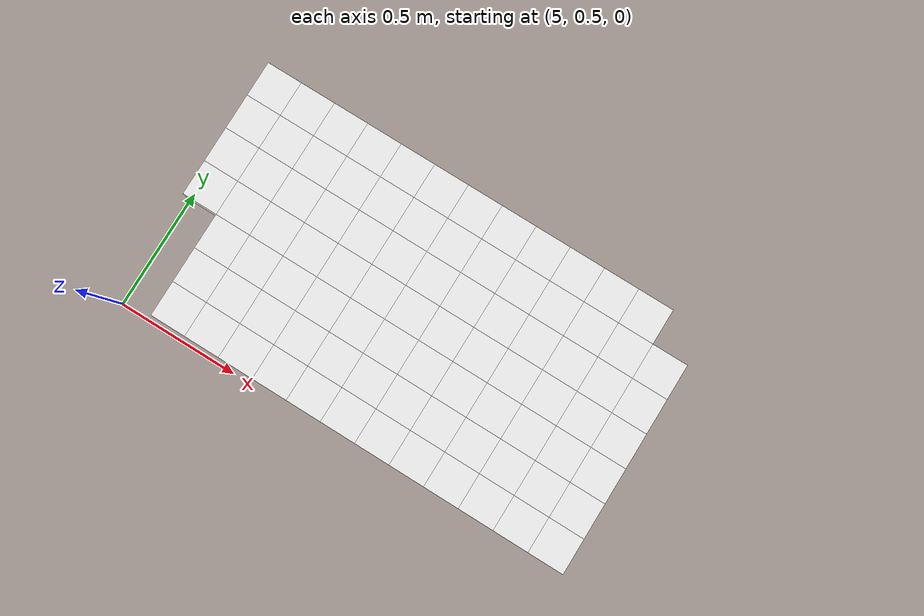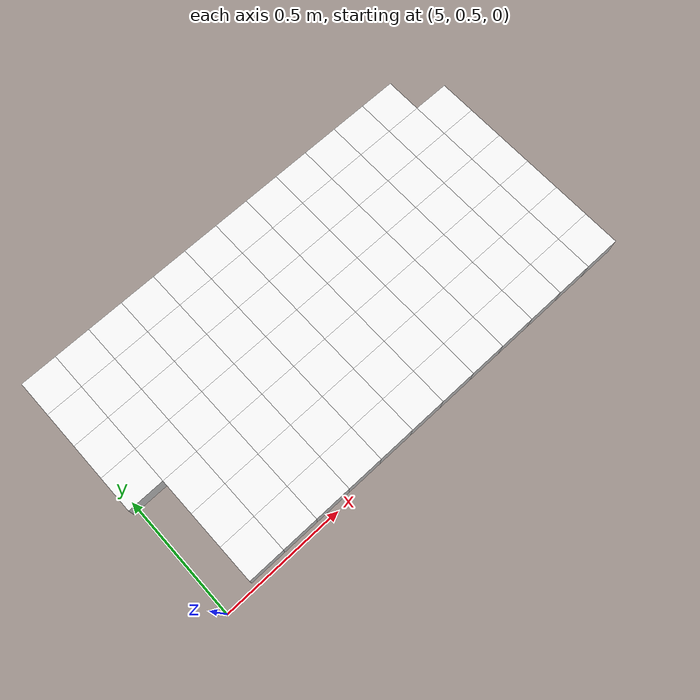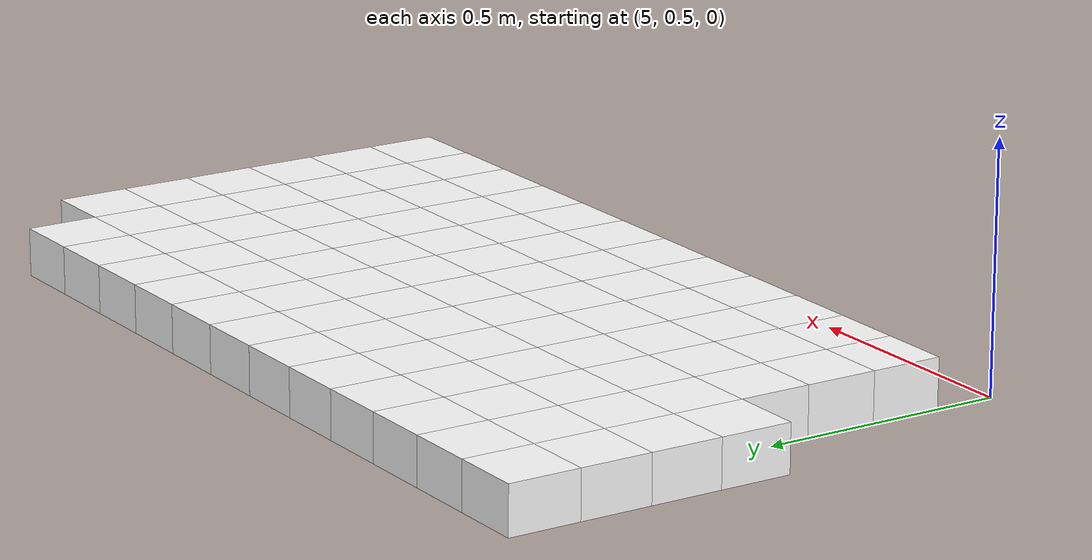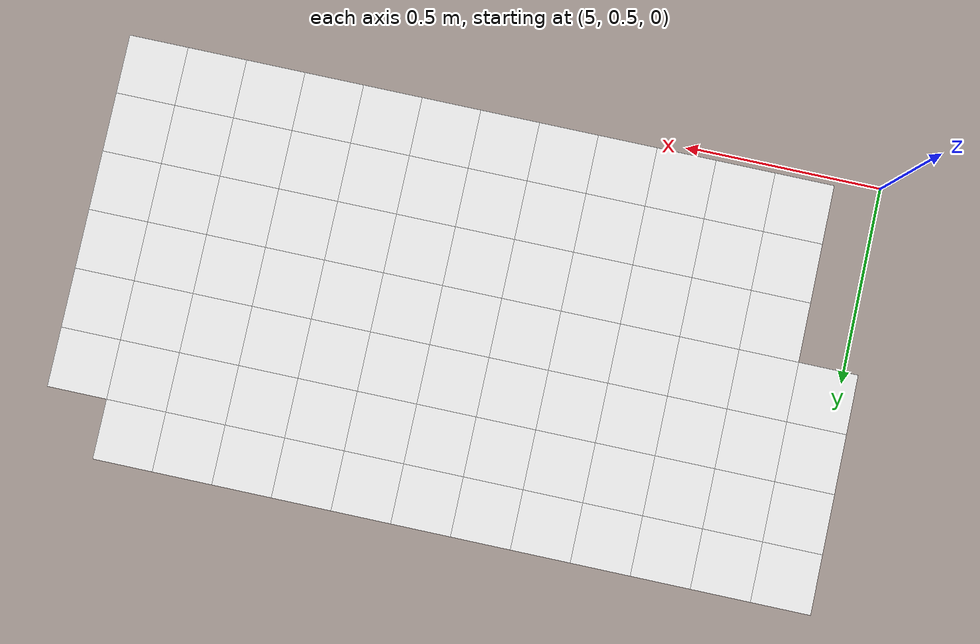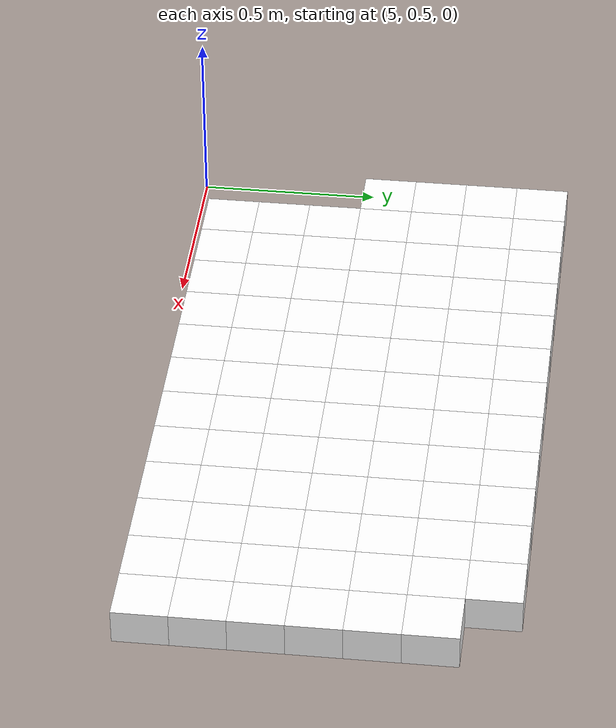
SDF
<sdf version="1.7">
 <world name="default">
  <include><uri>model://sun</uri></include>
  <model name="static_environment">
   <static>true</static>
   <link name="region_468">
    <pose>5.200000000000003 0.6 0.0 0.0 0.0 0.0</pose>
    <collision name="region_468_collision">
     <geometry><box><size>0.15 0.15 0.1</size></box></geometry>
     <surface><friction><ode><mu>1.0</mu><mu2>1.0</mu2></ode></friction></surface>
    </collision>
    <visual name="region_468_visual">
     <geometry><box><size>0.15 0.15 0.1</size></box></geometry>
     <material><ambient>1.0 1.0 1.0 1.0</ambient><diffuse>1.0 1.0 1.0 1.0</diffuse></material>
    </visual>
   </link>
   <link name="region_469">
    <pose>5.350000000000003 0.6 0.0 0.0 0.0 0.0</pose>
    <collision name="region_469_collision">
     <geometry><box><size>0.15 0.15 0.1</size></box></geometry>
     <surface><friction><ode><mu>1.0</mu><mu2>1.0</mu2></ode></friction></surface>
    </collision>
    <visual name="region_469_visual">
     <geometry><box><size>0.15 0.15 0.1</size></box></geometry>
     <material><ambient>1.0 1.0 1.0 1.0</ambient><diffuse>1.0 1.0 1.0 1.0</diffuse></material>
    </visual>
   </link>
   <link name="region_470">
    <pose>5.5000000000000036 0.6 0.0 0.0 0.0 0.0</pose>
    <collision name="region_470_collision">
     <geometry><box><size>0.15 0.15 0.1</size></box></geometry>
     <surface><friction><ode><mu>1.0</mu><mu2>1.0</mu2></ode></friction></surface>
    </collision>
    <visual name="region_470_visual">
     <geometry><box><size>0.15 0.15 0.1</size></box></geometry>
     <material><ambient>1.0 1.0 1.0 1.0</ambient><diffuse>1.0 1.0 1.0 1.0</diffuse></material>
    </visual>
   </link>
   <link name="region_471">
    <pose>5.650000000000004 0.6 0.0 0.0 0.0 0.0</pose>
    <collision name="region_471_collision">
     <geometry><box><size>0.15 0.15 0.1</size></box></geometry>
     <surface><friction><ode><mu>1.0</mu><mu2>1.0</mu2></ode></friction></surface>
    </collision>
    <visual name="region_471_visual">
     <geometry><box><size>0.15 0.15 0.1</size></box></geometry>
     <material><ambient>1.0 1.0 1.0 1.0</ambient><diffuse>1.0 1.0 1.0 1.0</diffuse></material>
    </visual>
   </link>
   <link name="region_472">
    <pose>5.800000000000004 0.6 0.0 0.0 0.0 0.0</pose>
    <collision name="region_472_collision">
     <geometry><box><size>0.15 0.15 0.1</size></box></geometry>
     <surface><friction><ode><mu>1.0</mu><mu2>1.0</mu2></ode></friction></surface>
    </collision>
    <visual name="region_472_visual">
     <geometry><box><size>0.15 0.15 0.1</size></box></geometry>
     <material><ambient>1.0 1.0 1.0 1.0</ambient><diffuse>1.0 1.0 1.0 1.0</diffuse></material>
    </visual>
   </link>
   <link name="region_473">
    <pose>5.950000000000005 0.6 0.0 0.0 0.0 0.0</pose>
    <collision name="region_473_collision">
     <geometry><box><size>0.15 0.15 0.1</size></box></geometry>
     <surface><friction><ode><mu>1.0</mu><mu2>1.0</mu2></ode></friction></surface>
    </collision>
    <visual name="region_473_visual">
     <geometry><box><size>0.15 0.15 0.1</size></box></geometry>
     <material><ambient>1.0 1.0 1.0 1.0</ambient><diffuse>1.0 1.0 1.0 1.0</diffuse></material>
    </visual>
   </link>
   <link name="region_474">
    <pose>6.100000000000005 0.6 0.0 0.0 0.0 0.0</pose>
    <collision name="region_474_collision">
     <geometry><box><size>0.15 0.15 0.1</size></box></geometry>
     <surface><friction><ode><mu>1.0</mu><mu2>1.0</mu2></ode></friction></surface>
    </collision>
    <visual name="region_474_visual">
     <geometry><box><size>0.15 0.15 0.1</size></box></geometry>
     <material><ambient>1.0 1.0 1.0 1.0</ambient><diffuse>1.0 1.0 1.0 1.0</diffuse></material>
    </visual>
   </link>
   <link name="region_475">
    <pose>6.250000000000005 0.6 0.0 0.0 0.0 0.0</pose>
    <collision name="region_475_collision">
     <geometry><box><size>0.15 0.15 0.1</size></box></geometry>
     <surface><friction><ode><mu>1.0</mu><mu2>1.0</mu2></ode></friction></surface>
    </collision>
    <visual name="region_475_visual">
     <geometry><box><size>0.15 0.15 0.1</size></box></geometry>
     <material><ambient>1.0 1.0 1.0 1.0</ambient><diffuse>1.0 1.0 1.0 1.0</diffuse></material>
    </visual>
   </link>
   <link name="region_476">
    <pose>6.400000000000006 0.6 0.0 0.0 0.0 0.0</pose>
    <collision name="region_476_collision">
     <geometry><box><size>0.15 0.15 0.1</size></box></geometry>
     <surface><friction><ode><mu>1.0</mu><mu2>1.0</mu2></ode></friction></surface>
    </collision>
    <visual name="region_476_visual">
     <geometry><box><size>0.15 0.15 0.1</size></box></geometry>
     <material><ambient>1.0 1.0 1.0 1.0</ambient><diffuse>1.0 1.0 1.0 1.0</diffuse></material>
    </visual>
   </link>
   <link name="region_477">
    <pose>6.550000000000006 0.6 0.0 0.0 0.0 0.0</pose>
    <collision name="region_477_collision">
     <geometry><box><size>0.15 0.15 0.1</size></box></geometry>
     <surface><friction><ode><mu>1.0</mu><mu2>1.0</mu2></ode></friction></surface>
    </collision>
    <visual name="region_477_visual">
     <geometry><box><size>0.15 0.15 0.1</size></box></geometry>
     <material><ambient>1.0 1.0 1.0 1.0</ambient><diffuse>1.0 1.0 1.0 1.0</diffuse></material>
    </visual>
   </link>
   <link name="region_478">
    <pose>6.700000000000006 0.6 0.0 0.0 0.0 0.0</pose>
    <collision name="region_478_collision">
     <geometry><box><size>0.15 0.15 0.1</size></box></geometry>
     <surface><friction><ode><mu>1.0</mu><mu2>1.0</mu2></ode></friction></surface>
    </collision>
    <visual name="region_478_visual">
     <geometry><box><size>0.15 0.15 0.1</size></box></geometry>
     <material><ambient>1.0 1.0 1.0 1.0</ambient><diffuse>1.0 1.0 1.0 1.0</diffuse></material>
    </visual>
   </link>
   <link name="region_479">
    <pose>6.850000000000007 0.6 0.0 0.0 0.0 0.0</pose>
    <collision name="region_479_collision">
     <geometry><box><size>0.15 0.15 0.1</size></box></geometry>
     <surface><friction><ode><mu>1.0</mu><mu2>1.0</mu2></ode></friction></surface>
    </collision>
    <visual name="region_479_visual">
     <geometry><box><size>0.15 0.15 0.1</size></box></geometry>
     <material><ambient>1.0 1.0 1.0 1.0</ambient><diffuse>1.0 1.0 1.0 1.0</diffuse></material>
    </visual>
   </link>
   <link name="region_488">
    <pose>5.200000000000003 0.75 0.0 0.0 0.0 0.0</pose>
    <collision name="region_488_collision">
     <geometry><box><size>0.15 0.15 0.1</size></box></geometry>
     <surface><friction><ode><mu>1.0</mu><mu2>1.0</mu2></ode></friction></surface>
    </collision>
    <visual name="region_488_visual">
     <geometry><box><size>0.15 0.15 0.1</size></box></geometry>
     <material><ambient>1.0 1.0 1.0 1.0</ambient><diffuse>1.0 1.0 1.0 1.0</diffuse></material>
    </visual>
   </link>
   <link name="region_489">
    <pose>5.350000000000003 0.75 0.0 0.0 0.0 0.0</pose>
    <collision name="region_489_collision">
     <geometry><box><size>0.15 0.15 0.1</size></box></geometry>
     <surface><friction><ode><mu>1.0</mu><mu2>1.0</mu2></ode></friction></surface>
    </collision>
    <visual name="region_489_visual">
     <geometry><box><size>0.15 0.15 0.1</size></box></geometry>
     <material><ambient>1.0 1.0 1.0 1.0</ambient><diffuse>1.0 1.0 1.0 1.0</diffuse></material>
    </visual>
   </link>
   <link name="region_490">
    <pose>5.5000000000000036 0.75 0.0 0.0 0.0 0.0</pose>
    <collision name="region_490_collision">
     <geometry><box><size>0.15 0.15 0.1</size></box></geometry>
     <surface><friction><ode><mu>1.0</mu><mu2>1.0</mu2></ode></friction></surface>
    </collision>
    <visual name="region_490_visual">
     <geometry><box><size>0.15 0.15 0.1</size></box></geometry>
     <material><ambient>1.0 1.0 1.0 1.0</ambient><diffuse>1.0 1.0 1.0 1.0</diffuse></material>
    </visual>
   </link>
   <link name="region_491">
    <pose>5.650000000000004 0.75 0.0 0.0 0.0 0.0</pose>
    <collision name="region_491_collision">
     <geometry><box><size>0.15 0.15 0.1</size></box></geometry>
     <surface><friction><ode><mu>1.0</mu><mu2>1.0</mu2></ode></friction></surface>
    </collision>
    <visual name="region_491_visual">
     <geometry><box><size>0.15 0.15 0.1</size></box></geometry>
     <material><ambient>1.0 1.0 1.0 1.0</ambient><diffuse>1.0 1.0 1.0 1.0</diffuse></material>
    </visual>
   </link>
   <link name="region_492">
    <pose>5.800000000000004 0.75 0.0 0.0 0.0 0.0</pose>
    <collision name="region_492_collision">
     <geometry><box><size>0.15 0.15 0.1</size></box></geometry>
     <surface><friction><ode><mu>1.0</mu><mu2>1.0</mu2></ode></friction></surface>
    </collision>
    <visual name="region_492_visual">
     <geometry><box><size>0.15 0.15 0.1</size></box></geometry>
     <material><ambient>1.0 1.0 1.0 1.0</ambient><diffuse>1.0 1.0 1.0 1.0</diffuse></material>
    </visual>
   </link>
   <link name="region_493">
    <pose>5.950000000000005 0.75 0.0 0.0 0.0 0.0</pose>
    <collision name="region_493_collision">
     <geometry><box><size>0.15 0.15 0.1</size></box></geometry>
     <surface><friction><ode><mu>1.0</mu><mu2>1.0</mu2></ode></friction></surface>
    </collision>
    <visual name="region_493_visual">
     <geometry><box><size>0.15 0.15 0.1</size></box></geometry>
     <material><ambient>1.0 1.0 1.0 1.0</ambient><diffuse>1.0 1.0 1.0 1.0</diffuse></material>
    </visual>
   </link>
   <link name="region_494">
    <pose>6.100000000000005 0.75 0.0 0.0 0.0 0.0</pose>
    <collision name="region_494_collision">
     <geometry><box><size>0.15 0.15 0.1</size></box></geometry>
     <surface><friction><ode><mu>1.0</mu><mu2>1.0</mu2></ode></friction></surface>
    </collision>
    <visual name="region_494_visual">
     <geometry><box><size>0.15 0.15 0.1</size></box></geometry>
     <material><ambient>1.0 1.0 1.0 1.0</ambient><diffuse>1.0 1.0 1.0 1.0</diffuse></material>
    </visual>
   </link>
   <link name="region_495">
    <pose>6.250000000000005 0.75 0.0 0.0 0.0 0.0</pose>
    <collision name="region_495_collision">
     <geometry><box><size>0.15 0.15 0.1</size></box></geometry>
     <surface><friction><ode><mu>1.0</mu><mu2>1.0</mu2></ode></friction></surface>
    </collision>
    <visual name="region_495_visual">
     <geometry><box><size>0.15 0.15 0.1</size></box></geometry>
     <material><ambient>1.0 1.0 1.0 1.0</ambient><diffuse>1.0 1.0 1.0 1.0</diffuse></material>
    </visual>
   </link>
   <link name="region_496">
    <pose>6.400000000000006 0.75 0.0 0.0 0.0 0.0</pose>
    <collision name="region_496_collision">
     <geometry><box><size>0.15 0.15 0.1</size></box></geometry>
     <surface><friction><ode><mu>1.0</mu><mu2>1.0</mu2></ode></friction></surface>
    </collision>
    <visual name="region_496_visual">
     <geometry><box><size>0.15 0.15 0.1</size></box></geometry>
     <material><ambient>1.0 1.0 1.0 1.0</ambient><diffuse>1.0 1.0 1.0 1.0</diffuse></material>
    </visual>
   </link>
   <link name="region_497">
    <pose>6.550000000000006 0.75 0.0 0.0 0.0 0.0</pose>
    <collision name="region_497_collision">
     <geometry><box><size>0.15 0.15 0.1</size></box></geometry>
     <surface><friction><ode><mu>1.0</mu><mu2>1.0</mu2></ode></friction></surface>
    </collision>
    <visual name="region_497_visual">
     <geometry><box><size>0.15 0.15 0.1</size></box></geometry>
     <material><ambient>1.0 1.0 1.0 1.0</ambient><diffuse>1.0 1.0 1.0 1.0</diffuse></material>
    </visual>
   </link>
   <link name="region_498">
    <pose>6.700000000000006 0.75 0.0 0.0 0.0 0.0</pose>
    <collision name="region_498_collision">
     <geometry><box><size>0.15 0.15 0.1</size></box></geometry>
     <surface><friction><ode><mu>1.0</mu><mu2>1.0</mu2></ode></friction></surface>
    </collision>
    <visual name="region_498_visual">
     <geometry><box><size>0.15 0.15 0.1</size></box></geometry>
     <material><ambient>1.0 1.0 1.0 1.0</ambient><diffuse>1.0 1.0 1.0 1.0</diffuse></material>
    </visual>
   </link>
   <link name="region_499">
    <pose>6.850000000000007 0.75 0.0 0.0 0.0 0.0</pose>
    <collision name="region_499_collision">
     <geometry><box><size>0.15 0.15 0.1</size></box></geometry>
     <surface><friction><ode><mu>1.0</mu><mu2>1.0</mu2></ode></friction></surface>
    </collision>
    <visual name="region_499_visual">
     <geometry><box><size>0.15 0.15 0.1</size></box></geometry>
     <material><ambient>1.0 1.0 1.0 1.0</ambient><diffuse>1.0 1.0 1.0 1.0</diffuse></material>
    </visual>
   </link>
   <link name="region_508">
    <pose>5.200000000000003 0.8999999999999999 0.0 0.0 0.0 0.0</pose>
    <collision name="region_508_collision">
     <geometry><box><size>0.15 0.15 0.1</size></box></geometry>
     <surface><friction><ode><mu>1.0</mu><mu2>1.0</mu2></ode></friction></surface>
    </collision>
    <visual name="region_508_visual">
     <geometry><box><size>0.15 0.15 0.1</size></box></geometry>
     <material><ambient>1.0 1.0 1.0 1.0</ambient><diffuse>1.0 1.0 1.0 1.0</diffuse></material>
    </visual>
   </link>
   <link name="region_509">
    <pose>5.350000000000003 0.8999999999999999 0.0 0.0 0.0 0.0</pose>
    <collision name="region_509_collision">
     <geometry><box><size>0.15 0.15 0.1</size></box></geometry>
     <surface><friction><ode><mu>1.0</mu><mu2>1.0</mu2></ode></friction></surface>
    </collision>
    <visual name="region_509_visual">
     <geometry><box><size>0.15 0.15 0.1</size></box></geometry>
     <material><ambient>1.0 1.0 1.0 1.0</ambient><diffuse>1.0 1.0 1.0 1.0</diffuse></material>
    </visual>
   </link>
   <link name="region_510">
    <pose>5.5000000000000036 0.8999999999999999 0.0 0.0 0.0 0.0</pose>
    <collision name="region_510_collision">
     <geometry><box><size>0.15 0.15 0.1</size></box></geometry>
     <surface><friction><ode><mu>1.0</mu><mu2>1.0</mu2></ode></friction></surface>
    </collision>
    <visual name="region_510_visual">
     <geometry><box><size>0.15 0.15 0.1</size></box></geometry>
     <material><ambient>1.0 1.0 1.0 1.0</ambient><diffuse>1.0 1.0 1.0 1.0</diffuse></material>
    </visual>
   </link>
   <link name="region_511">
    <pose>5.650000000000004 0.8999999999999999 0.0 0.0 0.0 0.0</pose>
    <collision name="region_511_collision">
     <geometry><box><size>0.15 0.15 0.1</size></box></geometry>
     <surface><friction><ode><mu>1.0</mu><mu2>1.0</mu2></ode></friction></surface>
    </collision>
    <visual name="region_511_visual">
     <geometry><box><size>0.15 0.15 0.1</size></box></geometry>
     <material><ambient>1.0 1.0 1.0 1.0</ambient><diffuse>1.0 1.0 1.0 1.0</diffuse></material>
    </visual>
   </link>
   <link name="region_512">
    <pose>5.800000000000004 0.8999999999999999 0.0 0.0 0.0 0.0</pose>
    <collision name="region_512_collision">
     <geometry><box><size>0.15 0.15 0.1</size></box></geometry>
     <surface><friction><ode><mu>1.0</mu><mu2>1.0</mu2></ode></friction></surface>
    </collision>
    <visual name="region_512_visual">
     <geometry><box><size>0.15 0.15 0.1</size></box></geometry>
     <material><ambient>1.0 1.0 1.0 1.0</ambient><diffuse>1.0 1.0 1.0 1.0</diffuse></material>
    </visual>
   </link>
   <link name="region_513">
    <pose>5.950000000000005 0.8999999999999999 0.0 0.0 0.0 0.0</pose>
    <collision name="region_513_collision">
     <geometry><box><size>0.15 0.15 0.1</size></box></geometry>
     <surface><friction><ode><mu>1.0</mu><mu2>1.0</mu2></ode></friction></surface>
    </collision>
    <visual name="region_513_visual">
     <geometry><box><size>0.15 0.15 0.1</size></box></geometry>
     <material><ambient>1.0 1.0 1.0 1.0</ambient><diffuse>1.0 1.0 1.0 1.0</diffuse></material>
    </visual>
   </link>
   <link name="region_514">
    <pose>6.100000000000005 0.8999999999999999 0.0 0.0 0.0 0.0</pose>
    <collision name="region_514_collision">
     <geometry><box><size>0.15 0.15 0.1</size></box></geometry>
     <surface><friction><ode><mu>1.0</mu><mu2>1.0</mu2></ode></friction></surface>
    </collision>
    <visual name="region_514_visual">
     <geometry><box><size>0.15 0.15 0.1</size></box></geometry>
     <material><ambient>1.0 1.0 1.0 1.0</ambient><diffuse>1.0 1.0 1.0 1.0</diffuse></material>
    </visual>
   </link>
   <link name="region_515">
    <pose>6.250000000000005 0.8999999999999999 0.0 0.0 0.0 0.0</pose>
    <collision name="region_515_collision">
     <geometry><box><size>0.15 0.15 0.1</size></box></geometry>
     <surface><friction><ode><mu>1.0</mu><mu2>1.0</mu2></ode></friction></surface>
    </collision>
    <visual name="region_515_visual">
     <geometry><box><size>0.15 0.15 0.1</size></box></geometry>
     <material><ambient>1.0 1.0 1.0 1.0</ambient><diffuse>1.0 1.0 1.0 1.0</diffuse></material>
    </visual>
   </link>
   <link name="region_516">
    <pose>6.400000000000006 0.8999999999999999 0.0 0.0 0.0 0.0</pose>
    <collision name="region_516_collision">
     <geometry><box><size>0.15 0.15 0.1</size></box></geometry>
     <surface><friction><ode><mu>1.0</mu><mu2>1.0</mu2></ode></friction></surface>
    </collision>
    <visual name="region_516_visual">
     <geometry><box><size>0.15 0.15 0.1</size></box></geometry>
     <material><ambient>1.0 1.0 1.0 1.0</ambient><diffuse>1.0 1.0 1.0 1.0</diffuse></material>
    </visual>
   </link>
   <link name="region_517">
    <pose>6.550000000000006 0.8999999999999999 0.0 0.0 0.0 0.0</pose>
    <collision name="region_517_collision">
     <geometry><box><size>0.15 0.15 0.1</size></box></geometry>
     <surface><friction><ode><mu>1.0</mu><mu2>1.0</mu2></ode></friction></surface>
    </collision>
    <visual name="region_517_visual">
     <geometry><box><size>0.15 0.15 0.1</size></box></geometry>
     <material><ambient>1.0 1.0 1.0 1.0</ambient><diffuse>1.0 1.0 1.0 1.0</diffuse></material>
    </visual>
   </link>
   <link name="region_518">
    <pose>6.700000000000006 0.8999999999999999 0.0 0.0 0.0 0.0</pose>
    <collision name="region_518_collision">
     <geometry><box><size>0.15 0.15 0.1</size></box></geometry>
     <surface><friction><ode><mu>1.0</mu><mu2>1.0</mu2></ode></friction></surface>
    </collision>
    <visual name="region_518_visual">
     <geometry><box><size>0.15 0.15 0.1</size></box></geometry>
     <material><ambient>1.0 1.0 1.0 1.0</ambient><diffuse>1.0 1.0 1.0 1.0</diffuse></material>
    </visual>
   </link>
   <link name="region_519">
    <pose>6.850000000000007 0.8999999999999999 0.0 0.0 0.0 0.0</pose>
    <collision name="region_519_collision">
     <geometry><box><size>0.15 0.15 0.1</size></box></geometry>
     <surface><friction><ode><mu>1.0</mu><mu2>1.0</mu2></ode></friction></surface>
    </collision>
    <visual name="region_519_visual">
     <geometry><box><size>0.15 0.15 0.1</size></box></geometry>
     <material><ambient>1.0 1.0 1.0 1.0</ambient><diffuse>1.0 1.0 1.0 1.0</diffuse></material>
    </visual>
   </link>
   <link name="region_527">
    <pose>5.0500000000000025 1.0499999999999998 0.0 0.0 0.0 0.0</pose>
    <collision name="region_527_collision">
     <geometry><box><size>0.15 0.15 0.1</size></box></geometry>
     <surface><friction><ode><mu>1.0</mu><mu2>1.0</mu2></ode></friction></surface>
    </collision>
    <visual name="region_527_visual">
     <geometry><box><size>0.15 0.15 0.1</size></box></geometry>
     <material><ambient>1.0 1.0 1.0 1.0</ambient><diffuse>1.0 1.0 1.0 1.0</diffuse></material>
    </visual>
   </link>
   <link name="region_528">
    <pose>5.200000000000003 1.0499999999999998 0.0 0.0 0.0 0.0</pose>
    <collision name="region_528_collision">
     <geometry><box><size>0.15 0.15 0.1</size></box></geometry>
     <surface><friction><ode><mu>1.0</mu><mu2>1.0</mu2></ode></friction></surface>
    </collision>
    <visual name="region_528_visual">
     <geometry><box><size>0.15 0.15 0.1</size></box></geometry>
     <material><ambient>1.0 1.0 1.0 1.0</ambient><diffuse>1.0 1.0 1.0 1.0</diffuse></material>
    </visual>
   </link>
   <link name="region_529">
    <pose>5.350000000000003 1.0499999999999998 0.0 0.0 0.0 0.0</pose>
    <collision name="region_529_collision">
     <geometry><box><size>0.15 0.15 0.1</size></box></geometry>
     <surface><friction><ode><mu>1.0</mu><mu2>1.0</mu2></ode></friction></surface>
    </collision>
    <visual name="region_529_visual">
     <geometry><box><size>0.15 0.15 0.1</size></box></geometry>
     <material><ambient>1.0 1.0 1.0 1.0</ambient><diffuse>1.0 1.0 1.0 1.0</diffuse></material>
    </visual>
   </link>
   <link name="region_530">
    <pose>5.5000000000000036 1.0499999999999998 0.0 0.0 0.0 0.0</pose>
    <collision name="region_530_collision">
     <geometry><box><size>0.15 0.15 0.1</size></box></geometry>
     <surface><friction><ode><mu>1.0</mu><mu2>1.0</mu2></ode></friction></surface>
    </collision>
    <visual name="region_530_visual">
     <geometry><box><size>0.15 0.15 0.1</size></box></geometry>
     <material><ambient>1.0 1.0 1.0 1.0</ambient><diffuse>1.0 1.0 1.0 1.0</diffuse></material>
    </visual>
   </link>
   <link name="region_531">
    <pose>5.650000000000004 1.0499999999999998 0.0 0.0 0.0 0.0</pose>
    <collision name="region_531_collision">
     <geometry><box><size>0.15 0.15 0.1</size></box></geometry>
     <surface><friction><ode><mu>1.0</mu><mu2>1.0</mu2></ode></friction></surface>
    </collision>
    <visual name="region_531_visual">
     <geometry><box><size>0.15 0.15 0.1</size></box></geometry>
     <material><ambient>1.0 1.0 1.0 1.0</ambient><diffuse>1.0 1.0 1.0 1.0</diffuse></material>
    </visual>
   </link>
   <link name="region_532">
    <pose>5.800000000000004 1.0499999999999998 0.0 0.0 0.0 0.0</pose>
    <collision name="region_532_collision">
     <geometry><box><size>0.15 0.15 0.1</size></box></geometry>
     <surface><friction><ode><mu>1.0</mu><mu2>1.0</mu2></ode></friction></surface>
    </collision>
    <visual name="region_532_visual">
     <geometry><box><size>0.15 0.15 0.1</size></box></geometry>
     <material><ambient>1.0 1.0 1.0 1.0</ambient><diffuse>1.0 1.0 1.0 1.0</diffuse></material>
    </visual>
   </link>
   <link name="region_533">
    <pose>5.950000000000005 1.0499999999999998 0.0 0.0 0.0 0.0</pose>
    <collision name="region_533_collision">
     <geometry><box><size>0.15 0.15 0.1</size></box></geometry>
     <surface><friction><ode><mu>1.0</mu><mu2>1.0</mu2></ode></friction></surface>
    </collision>
    <visual name="region_533_visual">
     <geometry><box><size>0.15 0.15 0.1</size></box></geometry>
     <material><ambient>1.0 1.0 1.0 1.0</ambient><diffuse>1.0 1.0 1.0 1.0</diffuse></material>
    </visual>
   </link>
   <link name="region_534">
    <pose>6.100000000000005 1.0499999999999998 0.0 0.0 0.0 0.0</pose>
    <collision name="region_534_collision">
     <geometry><box><size>0.15 0.15 0.1</size></box></geometry>
     <surface><friction><ode><mu>1.0</mu><mu2>1.0</mu2></ode></friction></surface>
    </collision>
    <visual name="region_534_visual">
     <geometry><box><size>0.15 0.15 0.1</size></box></geometry>
     <material><ambient>1.0 1.0 1.0 1.0</ambient><diffuse>1.0 1.0 1.0 1.0</diffuse></material>
    </visual>
   </link>
   <link name="region_535">
    <pose>6.250000000000005 1.0499999999999998 0.0 0.0 0.0 0.0</pose>
    <collision name="region_535_collision">
     <geometry><box><size>0.15 0.15 0.1</size></box></geometry>
     <surface><friction><ode><mu>1.0</mu><mu2>1.0</mu2></ode></friction></surface>
    </collision>
    <visual name="region_535_visual">
     <geometry><box><size>0.15 0.15 0.1</size></box></geometry>
     <material><ambient>1.0 1.0 1.0 1.0</ambient><diffuse>1.0 1.0 1.0 1.0</diffuse></material>
    </visual>
   </link>
   <link name="region_536">
    <pose>6.400000000000006 1.0499999999999998 0.0 0.0 0.0 0.0</pose>
    <collision name="region_536_collision">
     <geometry><box><size>0.15 0.15 0.1</size></box></geometry>
     <surface><friction><ode><mu>1.0</mu><mu2>1.0</mu2></ode></friction></surface>
    </collision>
    <visual name="region_536_visual">
     <geometry><box><size>0.15 0.15 0.1</size></box></geometry>
     <material><ambient>1.0 1.0 1.0 1.0</ambient><diffuse>1.0 1.0 1.0 1.0</diffuse></material>
    </visual>
   </link>
   <link name="region_537">
    <pose>6.550000000000006 1.0499999999999998 0.0 0.0 0.0 0.0</pose>
    <collision name="region_537_collision">
     <geometry><box><size>0.15 0.15 0.1</size></box></geometry>
     <surface><friction><ode><mu>1.0</mu><mu2>1.0</mu2></ode></friction></surface>
    </collision>
    <visual name="region_537_visual">
     <geometry><box><size>0.15 0.15 0.1</size></box></geometry>
     <material><ambient>1.0 1.0 1.0 1.0</ambient><diffuse>1.0 1.0 1.0 1.0</diffuse></material>
    </visual>
   </link>
   <link name="region_538">
    <pose>6.700000000000006 1.0499999999999998 0.0 0.0 0.0 0.0</pose>
    <collision name="region_538_collision">
     <geometry><box><size>0.15 0.15 0.1</size></box></geometry>
     <surface><friction><ode><mu>1.0</mu><mu2>1.0</mu2></ode></friction></surface>
    </collision>
    <visual name="region_538_visual">
     <geometry><box><size>0.15 0.15 0.1</size></box></geometry>
     <material><ambient>1.0 1.0 1.0 1.0</ambient><diffuse>1.0 1.0 1.0 1.0</diffuse></material>
    </visual>
   </link>
   <link name="region_539">
    <pose>6.850000000000007 1.0499999999999998 0.0 0.0 0.0 0.0</pose>
    <collision name="region_539_collision">
     <geometry><box><size>0.15 0.15 0.1</size></box></geometry>
     <surface><friction><ode><mu>1.0</mu><mu2>1.0</mu2></ode></friction></surface>
    </collision>
    <visual name="region_539_visual">
     <geometry><box><size>0.15 0.15 0.1</size></box></geometry>
     <material><ambient>1.0 1.0 1.0 1.0</ambient><diffuse>1.0 1.0 1.0 1.0</diffuse></material>
    </visual>
   </link>
   <link name="region_547">
    <pose>5.0500000000000025 1.2 0.0 0.0 0.0 0.0</pose>
    <collision name="region_547_collision">
     <geometry><box><size>0.15 0.15 0.1</size></box></geometry>
     <surface><friction><ode><mu>1.0</mu><mu2>1.0</mu2></ode></friction></surface>
    </collision>
    <visual name="region_547_visual">
     <geometry><box><size>0.15 0.15 0.1</size></box></geometry>
     <material><ambient>1.0 1.0 1.0 1.0</ambient><diffuse>1.0 1.0 1.0 1.0</diffuse></material>
    </visual>
   </link>
   <link name="region_548">
    <pose>5.200000000000003 1.2 0.0 0.0 0.0 0.0</pose>
    <collision name="region_548_collision">
     <geometry><box><size>0.15 0.15 0.1</size></box></geometry>
     <surface><friction><ode><mu>1.0</mu><mu2>1.0</mu2></ode></friction></surface>
    </collision>
    <visual name="region_548_visual">
     <geometry><box><size>0.15 0.15 0.1</size></box></geometry>
     <material><ambient>1.0 1.0 1.0 1.0</ambient><diffuse>1.0 1.0 1.0 1.0</diffuse></material>
    </visual>
   </link>
   <link name="region_549">
    <pose>5.350000000000003 1.2 0.0 0.0 0.0 0.0</pose>
    <collision name="region_549_collision">
     <geometry><box><size>0.15 0.15 0.1</size></box></geometry>
     <surface><friction><ode><mu>1.0</mu><mu2>1.0</mu2></ode></friction></surface>
    </collision>
    <visual name="region_549_visual">
     <geometry><box><size>0.15 0.15 0.1</size></box></geometry>
     <material><ambient>1.0 1.0 1.0 1.0</ambient><diffuse>1.0 1.0 1.0 1.0</diffuse></material>
    </visual>
   </link>
   <link name="region_550">
    <pose>5.5000000000000036 1.2 0.0 0.0 0.0 0.0</pose>
    <collision name="region_550_collision">
     <geometry><box><size>0.15 0.15 0.1</size></box></geometry>
     <surface><friction><ode><mu>1.0</mu><mu2>1.0</mu2></ode></friction></surface>
    </collision>
    <visual name="region_550_visual">
     <geometry><box><size>0.15 0.15 0.1</size></box></geometry>
     <material><ambient>1.0 1.0 1.0 1.0</ambient><diffuse>1.0 1.0 1.0 1.0</diffuse></material>
    </visual>
   </link>
   <link name="region_551">
    <pose>5.650000000000004 1.2 0.0 0.0 0.0 0.0</pose>
    <collision name="region_551_collision">
     <geometry><box><size>0.15 0.15 0.1</size></box></geometry>
     <surface><friction><ode><mu>1.0</mu><mu2>1.0</mu2></ode></friction></surface>
    </collision>
    <visual name="region_551_visual">
     <geometry><box><size>0.15 0.15 0.1</size></box></geometry>
     <material><ambient>1.0 1.0 1.0 1.0</ambient><diffuse>1.0 1.0 1.0 1.0</diffuse></material>
    </visual>
   </link>
   <link name="region_552">
    <pose>5.800000000000004 1.2 0.0 0.0 0.0 0.0</pose>
    <collision name="region_552_collision">
     <geometry><box><size>0.15 0.15 0.1</size></box></geometry>
     <surface><friction><ode><mu>1.0</mu><mu2>1.0</mu2></ode></friction></surface>
    </collision>
    <visual name="region_552_visual">
     <geometry><box><size>0.15 0.15 0.1</size></box></geometry>
     <material><ambient>1.0 1.0 1.0 1.0</ambient><diffuse>1.0 1.0 1.0 1.0</diffuse></material>
    </visual>
   </link>
   <link name="region_553">
    <pose>5.950000000000005 1.2 0.0 0.0 0.0 0.0</pose>
    <collision name="region_553_collision">
     <geometry><box><size>0.15 0.15 0.1</size></box></geometry>
     <surface><friction><ode><mu>1.0</mu><mu2>1.0</mu2></ode></friction></surface>
    </collision>
    <visual name="region_553_visual">
     <geometry><box><size>0.15 0.15 0.1</size></box></geometry>
     <material><ambient>1.0 1.0 1.0 1.0</ambient><diffuse>1.0 1.0 1.0 1.0</diffuse></material>
    </visual>
   </link>
   <link name="region_554">
    <pose>6.100000000000005 1.2 0.0 0.0 0.0 0.0</pose>
    <collision name="region_554_collision">
     <geometry><box><size>0.15 0.15 0.1</size></box></geometry>
     <surface><friction><ode><mu>1.0</mu><mu2>1.0</mu2></ode></friction></surface>
    </collision>
    <visual name="region_554_visual">
     <geometry><box><size>0.15 0.15 0.1</size></box></geometry>
     <material><ambient>1.0 1.0 1.0 1.0</ambient><diffuse>1.0 1.0 1.0 1.0</diffuse></material>
    </visual>
   </link>
   <link name="region_555">
    <pose>6.250000000000005 1.2 0.0 0.0 0.0 0.0</pose>
    <collision name="region_555_collision">
     <geometry><box><size>0.15 0.15 0.1</size></box></geometry>
     <surface><friction><ode><mu>1.0</mu><mu2>1.0</mu2></ode></friction></surface>
    </collision>
    <visual name="region_555_visual">
     <geometry><box><size>0.15 0.15 0.1</size></box></geometry>
     <material><ambient>1.0 1.0 1.0 1.0</ambient><diffuse>1.0 1.0 1.0 1.0</diffuse></material>
    </visual>
   </link>
   <link name="region_556">
    <pose>6.400000000000006 1.2 0.0 0.0 0.0 0.0</pose>
    <collision name="region_556_collision">
     <geometry><box><size>0.15 0.15 0.1</size></box></geometry>
     <surface><friction><ode><mu>1.0</mu><mu2>1.0</mu2></ode></friction></surface>
    </collision>
    <visual name="region_556_visual">
     <geometry><box><size>0.15 0.15 0.1</size></box></geometry>
     <material><ambient>1.0 1.0 1.0 1.0</ambient><diffuse>1.0 1.0 1.0 1.0</diffuse></material>
    </visual>
   </link>
   <link name="region_557">
    <pose>6.550000000000006 1.2 0.0 0.0 0.0 0.0</pose>
    <collision name="region_557_collision">
     <geometry><box><size>0.15 0.15 0.1</size></box></geometry>
     <surface><friction><ode><mu>1.0</mu><mu2>1.0</mu2></ode></friction></surface>
    </collision>
    <visual name="region_557_visual">
     <geometry><box><size>0.15 0.15 0.1</size></box></geometry>
     <material><ambient>1.0 1.0 1.0 1.0</ambient><diffuse>1.0 1.0 1.0 1.0</diffuse></material>
    </visual>
   </link>
   <link name="region_558">
    <pose>6.700000000000006 1.2 0.0 0.0 0.0 0.0</pose>
    <collision name="region_558_collision">
     <geometry><box><size>0.15 0.15 0.1</size></box></geometry>
     <surface><friction><ode><mu>1.0</mu><mu2>1.0</mu2></ode></friction></surface>
    </collision>
    <visual name="region_558_visual">
     <geometry><box><size>0.15 0.15 0.1</size></box></geometry>
     <material><ambient>1.0 1.0 1.0 1.0</ambient><diffuse>1.0 1.0 1.0 1.0</diffuse></material>
    </visual>
   </link>
   <link name="region_559">
    <pose>6.850000000000007 1.2 0.0 0.0 0.0 0.0</pose>
    <collision name="region_559_collision">
     <geometry><box><size>0.15 0.15 0.1</size></box></geometry>
     <surface><friction><ode><mu>1.0</mu><mu2>1.0</mu2></ode></friction></surface>
    </collision>
    <visual name="region_559_visual">
     <geometry><box><size>0.15 0.15 0.1</size></box></geometry>
     <material><ambient>1.0 1.0 1.0 1.0</ambient><diffuse>1.0 1.0 1.0 1.0</diffuse></material>
    </visual>
   </link>
   <link name="region_567">
    <pose>5.0500000000000025 1.35 0.0 0.0 0.0 0.0</pose>
    <collision name="region_567_collision">
     <geometry><box><size>0.15 0.15 0.1</size></box></geometry>
     <surface><friction><ode><mu>1.0</mu><mu2>1.0</mu2></ode></friction></surface>
    </collision>
    <visual name="region_567_visual">
     <geometry><box><size>0.15 0.15 0.1</size></box></geometry>
     <material><ambient>1.0 1.0 1.0 1.0</ambient><diffuse>1.0 1.0 1.0 1.0</diffuse></material>
    </visual>
   </link>
   <link name="region_568">
    <pose>5.200000000000003 1.35 0.0 0.0 0.0 0.0</pose>
    <collision name="region_568_collision">
     <geometry><box><size>0.15 0.15 0.1</size></box></geometry>
     <surface><friction><ode><mu>1.0</mu><mu2>1.0</mu2></ode></friction></surface>
    </collision>
    <visual name="region_568_visual">
     <geometry><box><size>0.15 0.15 0.1</size></box></geometry>
     <material><ambient>1.0 1.0 1.0 1.0</ambient><diffuse>1.0 1.0 1.0 1.0</diffuse></material>
    </visual>
   </link>
   <link name="region_569">
    <pose>5.350000000000003 1.35 0.0 0.0 0.0 0.0</pose>
    <collision name="region_569_collision">
     <geometry><box><size>0.15 0.15 0.1</size></box></geometry>
     <surface><friction><ode><mu>1.0</mu><mu2>1.0</mu2></ode></friction></surface>
    </collision>
    <visual name="region_569_visual">
     <geometry><box><size>0.15 0.15 0.1</size></box></geometry>
     <material><ambient>1.0 1.0 1.0 1.0</ambient><diffuse>1.0 1.0 1.0 1.0</diffuse></material>
    </visual>
   </link>
   <link name="region_570">
    <pose>5.5000000000000036 1.35 0.0 0.0 0.0 0.0</pose>
    <collision name="region_570_collision">
     <geometry><box><size>0.15 0.15 0.1</size></box></geometry>
     <surface><friction><ode><mu>1.0</mu><mu2>1.0</mu2></ode></friction></surface>
    </collision>
    <visual name="region_570_visual">
     <geometry><box><size>0.15 0.15 0.1</size></box></geometry>
     <material><ambient>1.0 1.0 1.0 1.0</ambient><diffuse>1.0 1.0 1.0 1.0</diffuse></material>
    </visual>
   </link>
   <link name="region_571">
    <pose>5.650000000000004 1.35 0.0 0.0 0.0 0.0</pose>
    <collision name="region_571_collision">
     <geometry><box><size>0.15 0.15 0.1</size></box></geometry>
     <surface><friction><ode><mu>1.0</mu><mu2>1.0</mu2></ode></friction></surface>
    </collision>
    <visual name="region_571_visual">
     <geometry><box><size>0.15 0.15 0.1</size></box></geometry>
     <material><ambient>1.0 1.0 1.0 1.0</ambient><diffuse>1.0 1.0 1.0 1.0</diffuse></material>
    </visual>
   </link>
   <link name="region_572">
    <pose>5.800000000000004 1.35 0.0 0.0 0.0 0.0</pose>
    <collision name="region_572_collision">
     <geometry><box><size>0.15 0.15 0.1</size></box></geometry>
     <surface><friction><ode><mu>1.0</mu><mu2>1.0</mu2></ode></friction></surface>
    </collision>
    <visual name="region_572_visual">
     <geometry><box><size>0.15 0.15 0.1</size></box></geometry>
     <material><ambient>1.0 1.0 1.0 1.0</ambient><diffuse>1.0 1.0 1.0 1.0</diffuse></material>
    </visual>
   </link>
   <link name="region_573">
    <pose>5.950000000000005 1.35 0.0 0.0 0.0 0.0</pose>
    <collision name="region_573_collision">
     <geometry><box><size>0.15 0.15 0.1</size></box></geometry>
     <surface><friction><ode><mu>1.0</mu><mu2>1.0</mu2></ode></friction></surface>
    </collision>
    <visual name="region_573_visual">
     <geometry><box><size>0.15 0.15 0.1</size></box></geometry>
     <material><ambient>1.0 1.0 1.0 1.0</ambient><diffuse>1.0 1.0 1.0 1.0</diffuse></material>
    </visual>
   </link>
   <link name="region_574">
    <pose>6.100000000000005 1.35 0.0 0.0 0.0 0.0</pose>
    <collision name="region_574_collision">
     <geometry><box><size>0.15 0.15 0.1</size></box></geometry>
     <surface><friction><ode><mu>1.0</mu><mu2>1.0</mu2></ode></friction></surface>
    </collision>
    <visual name="region_574_visual">
     <geometry><box><size>0.15 0.15 0.1</size></box></geometry>
     <material><ambient>1.0 1.0 1.0 1.0</ambient><diffuse>1.0 1.0 1.0 1.0</diffuse></material>
    </visual>
   </link>
   <link name="region_575">
    <pose>6.250000000000005 1.35 0.0 0.0 0.0 0.0</pose>
    <collision name="region_575_collision">
     <geometry><box><size>0.15 0.15 0.1</size></box></geometry>
     <surface><friction><ode><mu>1.0</mu><mu2>1.0</mu2></ode></friction></surface>
    </collision>
    <visual name="region_575_visual">
     <geometry><box><size>0.15 0.15 0.1</size></box></geometry>
     <material><ambient>1.0 1.0 1.0 1.0</ambient><diffuse>1.0 1.0 1.0 1.0</diffuse></material>
    </visual>
   </link>
   <link name="region_576">
    <pose>6.400000000000006 1.35 0.0 0.0 0.0 0.0</pose>
    <collision name="region_576_collision">
     <geometry><box><size>0.15 0.15 0.1</size></box></geometry>
     <surface><friction><ode><mu>1.0</mu><mu2>1.0</mu2></ode></friction></surface>
    </collision>
    <visual name="region_576_visual">
     <geometry><box><size>0.15 0.15 0.1</size></box></geometry>
     <material><ambient>1.0 1.0 1.0 1.0</ambient><diffuse>1.0 1.0 1.0 1.0</diffuse></material>
    </visual>
   </link>
   <link name="region_577">
    <pose>6.550000000000006 1.35 0.0 0.0 0.0 0.0</pose>
    <collision name="region_577_collision">
     <geometry><box><size>0.15 0.15 0.1</size></box></geometry>
     <surface><friction><ode><mu>1.0</mu><mu2>1.0</mu2></ode></friction></surface>
    </collision>
    <visual name="region_577_visual">
     <geometry><box><size>0.15 0.15 0.1</size></box></geometry>
     <material><ambient>1.0 1.0 1.0 1.0</ambient><diffuse>1.0 1.0 1.0 1.0</diffuse></material>
    </visual>
   </link>
   <link name="region_578">
    <pose>6.700000000000006 1.35 0.0 0.0 0.0 0.0</pose>
    <collision name="region_578_collision">
     <geometry><box><size>0.15 0.15 0.1</size></box></geometry>
     <surface><friction><ode><mu>1.0</mu><mu2>1.0</mu2></ode></friction></surface>
    </collision>
    <visual name="region_578_visual">
     <geometry><box><size>0.15 0.15 0.1</size></box></geometry>
     <material><ambient>1.0 1.0 1.0 1.0</ambient><diffuse>1.0 1.0 1.0 1.0</diffuse></material>
    </visual>
   </link>
   <link name="region_579">
    <pose>6.850000000000007 1.35 0.0 0.0 0.0 0.0</pose>
    <collision name="region_579_collision">
     <geometry><box><size>0.15 0.15 0.1</size></box></geometry>
     <surface><friction><ode><mu>1.0</mu><mu2>1.0</mu2></ode></friction></surface>
    </collision>
    <visual name="region_579_visual">
     <geometry><box><size>0.15 0.15 0.1</size></box></geometry>
     <material><ambient>1.0 1.0 1.0 1.0</ambient><diffuse>1.0 1.0 1.0 1.0</diffuse></material>
    </visual>
   </link>
   <link name="region_587">
    <pose>5.0500000000000025 1.5 0.0 0.0 0.0 0.0</pose>
    <collision name="region_587_collision">
     <geometry><box><size>0.15 0.15 0.1</size></box></geometry>
     <surface><friction><ode><mu>1.0</mu><mu2>1.0</mu2></ode></friction></surface>
    </collision>
    <visual name="region_587_visual">
     <geometry><box><size>0.15 0.15 0.1</size></box></geometry>
     <material><ambient>1.0 1.0 1.0 1.0</ambient><diffuse>1.0 1.0 1.0 1.0</diffuse></material>
    </visual>
   </link>
   <link name="region_588">
    <pose>5.200000000000003 1.5 0.0 0.0 0.0 0.0</pose>
    <collision name="region_588_collision">
     <geometry><box><size>0.15 0.15 0.1</size></box></geometry>
     <surface><friction><ode><mu>1.0</mu><mu2>1.0</mu2></ode></friction></surface>
    </collision>
    <visual name="region_588_visual">
     <geometry><box><size>0.15 0.15 0.1</size></box></geometry>
     <material><ambient>1.0 1.0 1.0 1.0</ambient><diffuse>1.0 1.0 1.0 1.0</diffuse></material>
    </visual>
   </link>
   <link name="region_589">
    <pose>5.350000000000003 1.5 0.0 0.0 0.0 0.0</pose>
    <collision name="region_589_collision">
     <geometry><box><size>0.15 0.15 0.1</size></box></geometry>
     <surface><friction><ode><mu>1.0</mu><mu2>1.0</mu2></ode></friction></surface>
    </collision>
    <visual name="region_589_visual">
     <geometry><box><size>0.15 0.15 0.1</size></box></geometry>
     <material><ambient>1.0 1.0 1.0 1.0</ambient><diffuse>1.0 1.0 1.0 1.0</diffuse></material>
    </visual>
   </link>
   <link name="region_590">
    <pose>5.5000000000000036 1.5 0.0 0.0 0.0 0.0</pose>
    <collision name="region_590_collision">
     <geometry><box><size>0.15 0.15 0.1</size></box></geometry>
     <surface><friction><ode><mu>1.0</mu><mu2>1.0</mu2></ode></friction></surface>
    </collision>
    <visual name="region_590_visual">
     <geometry><box><size>0.15 0.15 0.1</size></box></geometry>
     <material><ambient>1.0 1.0 1.0 1.0</ambient><diffuse>1.0 1.0 1.0 1.0</diffuse></material>
    </visual>
   </link>
   <link name="region_591">
    <pose>5.650000000000004 1.5 0.0 0.0 0.0 0.0</pose>
    <collision name="region_591_collision">
     <geometry><box><size>0.15 0.15 0.1</size></box></geometry>
     <surface><friction><ode><mu>1.0</mu><mu2>1.0</mu2></ode></friction></surface>
    </collision>
    <visual name="region_591_visual">
     <geometry><box><size>0.15 0.15 0.1</size></box></geometry>
     <material><ambient>1.0 1.0 1.0 1.0</ambient><diffuse>1.0 1.0 1.0 1.0</diffuse></material>
    </visual>
   </link>
   <link name="region_592">
    <pose>5.800000000000004 1.5 0.0 0.0 0.0 0.0</pose>
    <collision name="region_592_collision">
     <geometry><box><size>0.15 0.15 0.1</size></box></geometry>
     <surface><friction><ode><mu>1.0</mu><mu2>1.0</mu2></ode></friction></surface>
    </collision>
    <visual name="region_592_visual">
     <geometry><box><size>0.15 0.15 0.1</size></box></geometry>
     <material><ambient>1.0 1.0 1.0 1.0</ambient><diffuse>1.0 1.0 1.0 1.0</diffuse></material>
    </visual>
   </link>
   <link name="region_593">
    <pose>5.950000000000005 1.5 0.0 0.0 0.0 0.0</pose>
    <collision name="region_593_collision">
     <geometry><box><size>0.15 0.15 0.1</size></box></geometry>
     <surface><friction><ode><mu>1.0</mu><mu2>1.0</mu2></ode></friction></surface>
    </collision>
    <visual name="region_593_visual">
     <geometry><box><size>0.15 0.15 0.1</size></box></geometry>
     <material><ambient>1.0 1.0 1.0 1.0</ambient><diffuse>1.0 1.0 1.0 1.0</diffuse></material>
    </visual>
   </link>
   <link name="region_594">
    <pose>6.100000000000005 1.5 0.0 0.0 0.0 0.0</pose>
    <collision name="region_594_collision">
     <geometry><box><size>0.15 0.15 0.1</size></box></geometry>
     <surface><friction><ode><mu>1.0</mu><mu2>1.0</mu2></ode></friction></surface>
    </collision>
    <visual name="region_594_visual">
     <geometry><box><size>0.15 0.15 0.1</size></box></geometry>
     <material><ambient>1.0 1.0 1.0 1.0</ambient><diffuse>1.0 1.0 1.0 1.0</diffuse></material>
    </visual>
   </link>
   <link name="region_595">
    <pose>6.250000000000005 1.5 0.0 0.0 0.0 0.0</pose>
    <collision name="region_595_collision">
     <geometry><box><size>0.15 0.15 0.1</size></box></geometry>
     <surface><friction><ode><mu>1.0</mu><mu2>1.0</mu2></ode></friction></surface>
    </collision>
    <visual name="region_595_visual">
     <geometry><box><size>0.15 0.15 0.1</size></box></geometry>
     <material><ambient>1.0 1.0 1.0 1.0</ambient><diffuse>1.0 1.0 1.0 1.0</diffuse></material>
    </visual>
   </link>
   <link name="region_596">
    <pose>6.400000000000006 1.5 0.0 0.0 0.0 0.0</pose>
    <collision name="region_596_collision">
     <geometry><box><size>0.15 0.15 0.1</size></box></geometry>
     <surface><friction><ode><mu>1.0</mu><mu2>1.0</mu2></ode></friction></surface>
    </collision>
    <visual name="region_596_visual">
     <geometry><box><size>0.15 0.15 0.1</size></box></geometry>
     <material><ambient>1.0 1.0 1.0 1.0</ambient><diffuse>1.0 1.0 1.0 1.0</diffuse></material>
    </visual>
   </link>
   <link name="region_597">
    <pose>6.550000000000006 1.5 0.0 0.0 0.0 0.0</pose>
    <collision name="region_597_collision">
     <geometry><box><size>0.15 0.15 0.1</size></box></geometry>
     <surface><friction><ode><mu>1.0</mu><mu2>1.0</mu2></ode></friction></surface>
    </collision>
    <visual name="region_597_visual">
     <geometry><box><size>0.15 0.15 0.1</size></box></geometry>
     <material><ambient>1.0 1.0 1.0 1.0</ambient><diffuse>1.0 1.0 1.0 1.0</diffuse></material>
    </visual>
   </link>
   <link name="region_598">
    <pose>6.700000000000006 1.5 0.0 0.0 0.0 0.0</pose>
    <collision name="region_598_collision">
     <geometry><box><size>0.15 0.15 0.1</size></box></geometry>
     <surface><friction><ode><mu>1.0</mu><mu2>1.0</mu2></ode></friction></surface>
    </collision>
    <visual name="region_598_visual">
     <geometry><box><size>0.15 0.15 0.1</size></box></geometry>
     <material><ambient>1.0 1.0 1.0 1.0</ambient><diffuse>1.0 1.0 1.0 1.0</diffuse></material>
    </visual>
   </link>
  </model>
 </world>
</sdf>
